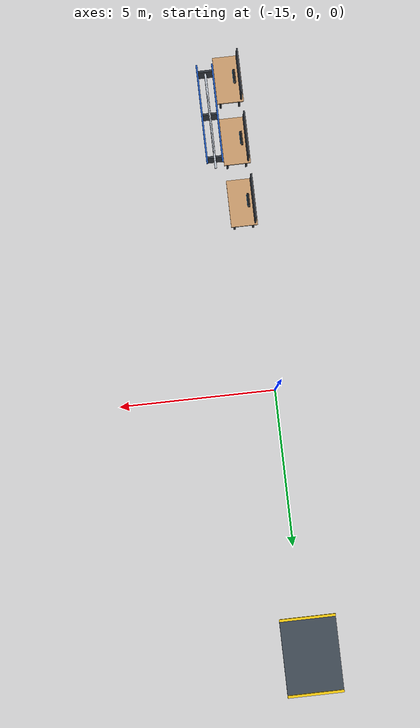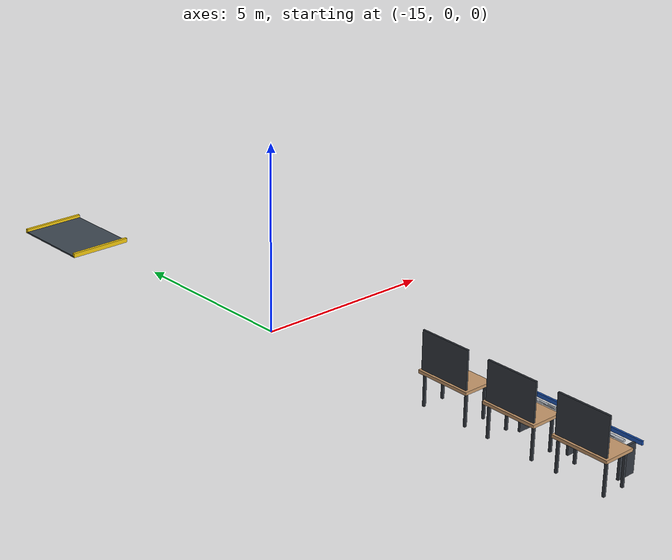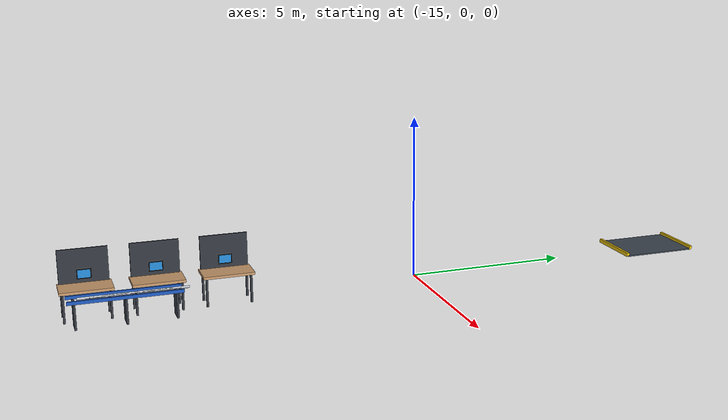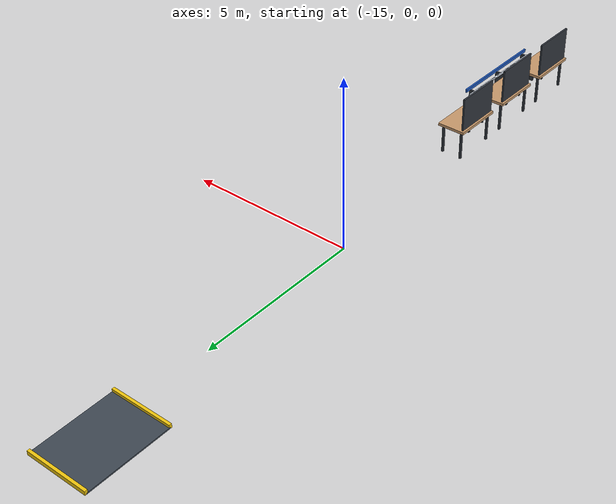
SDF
<sdf version="1.8">
 <world name="warehouse_3d">
  <model name="packing_equipment">
   <static>true</static>
   <link name="bench_top_0">
    <pose>-14.6000 -6.0000 0.9000 0.0000 0.0000 0.0000</pose>
    <collision name="bench_top_0_col">
     <geometry><box><size>0.8500 1.5000 0.0800</size></box></geometry>
    </collision>
    <visual name="bench_top_0_vis">
     <geometry><box><size>0.8500 1.5000 0.0800</size></box></geometry>
     <material>
      <ambient>0.507 0.390 0.273 1.00</ambient>
      <diffuse>0.780 0.600 0.420 1.00</diffuse>
      <specular>0.15 0.15 0.15 1.0</specular>
     </material>
    </visual>
   </link>
   <link name="bench_leg_0_0">
    <pose>-14.9000 -6.6500 0.4300 0.0000 0.0000 0.0000</pose>
    <collision name="bench_leg_0_0_col">
     <geometry><box><size>0.0600 0.0600 0.8600</size></box></geometry>
    </collision>
    <visual name="bench_leg_0_0_vis">
     <geometry><box><size>0.0600 0.0600 0.8600</size></box></geometry>
     <material>
      <ambient>0.130 0.143 0.163 1.00</ambient>
      <diffuse>0.200 0.220 0.250 1.00</diffuse>
      <specular>0.15 0.15 0.15 1.0</specular>
     </material>
    </visual>
   </link>
   <link name="bench_leg_0_1">
    <pose>-14.9000 -5.3500 0.4300 0.0000 0.0000 0.0000</pose>
    <collision name="bench_leg_0_1_col">
     <geometry><box><size>0.0600 0.0600 0.8600</size></box></geometry>
    </collision>
    <visual name="bench_leg_0_1_vis">
     <geometry><box><size>0.0600 0.0600 0.8600</size></box></geometry>
     <material>
      <ambient>0.130 0.143 0.163 1.00</ambient>
      <diffuse>0.200 0.220 0.250 1.00</diffuse>
      <specular>0.15 0.15 0.15 1.0</specular>
     </material>
    </visual>
   </link>
   <link name="bench_leg_0_2">
    <pose>-14.3000 -6.6500 0.4300 0.0000 0.0000 0.0000</pose>
    <collision name="bench_leg_0_2_col">
     <geometry><box><size>0.0600 0.0600 0.8600</size></box></geometry>
    </collision>
    <visual name="bench_leg_0_2_vis">
     <geometry><box><size>0.0600 0.0600 0.8600</size></box></geometry>
     <material>
      <ambient>0.130 0.143 0.163 1.00</ambient>
      <diffuse>0.200 0.220 0.250 1.00</diffuse>
      <specular>0.15 0.15 0.15 1.0</specular>
     </material>
    </visual>
   </link>
   <link name="bench_leg_0_3">
    <pose>-14.3000 -5.3500 0.4300 0.0000 0.0000 0.0000</pose>
    <collision name="bench_leg_0_3_col">
     <geometry><box><size>0.0600 0.0600 0.8600</size></box></geometry>
    </collision>
    <visual name="bench_leg_0_3_vis">
     <geometry><box><size>0.0600 0.0600 0.8600</size></box></geometry>
     <material>
      <ambient>0.130 0.143 0.163 1.00</ambient>
      <diffuse>0.200 0.220 0.250 1.00</diffuse>
      <specular>0.15 0.15 0.15 1.0</specular>
     </material>
    </visual>
   </link>
   <link name="bench_gantry_0">
    <pose>-14.9500 -6.0000 1.4500 0.0000 0.0000 0.0000</pose>
    <visual name="bench_gantry_0_vis">
     <geometry><box><size>0.0500 1.4000 1.0000</size></box></geometry>
     <material>
      <ambient>0.130 0.143 0.163 1.00</ambient>
      <diffuse>0.200 0.220 0.250 1.00</diffuse>
      <specular>0.15 0.15 0.15 1.0</specular>
     </material>
    </visual>
   </link>
   <link name="bench_screen_0">
    <pose>-14.8000 -6.0000 1.2500 0.0000 0.0000 0.0000</pose>
    <visual name="bench_screen_0_vis">
     <geometry><box><size>0.0600 0.4000 0.2800</size></box></geometry>
     <material>
      <ambient>0.065 0.065 0.065 1.00</ambient>
      <diffuse>0.100 0.100 0.100 1.00</diffuse>
      <specular>0.15 0.15 0.15 1.0</specular>
     </material>
    </visual>
   </link>
   <link name="bench_display_0">
    <pose>-14.7600 -6.0000 1.2500 0.0000 0.0000 0.0000</pose>
    <visual name="bench_display_0_vis">
     <geometry><box><size>0.0100 0.3600 0.2400</size></box></geometry>
     <material>
      <ambient>0.098 0.358 0.552 1.00</ambient>
      <diffuse>0.150 0.550 0.850 1.00</diffuse>
      <specular>0.15 0.15 0.15 1.0</specular>
      <emissive>0.100 0.400 0.700 1.0</emissive>
     </material>
    </visual>
   </link>
   <link name="bench_top_1">
    <pose>-14.6000 -8.0000 0.9000 0.0000 0.0000 0.0000</pose>
    <collision name="bench_top_1_col">
     <geometry><box><size>0.8500 1.5000 0.0800</size></box></geometry>
    </collision>
    <visual name="bench_top_1_vis">
     <geometry><box><size>0.8500 1.5000 0.0800</size></box></geometry>
     <material>
      <ambient>0.507 0.390 0.273 1.00</ambient>
      <diffuse>0.780 0.600 0.420 1.00</diffuse>
      <specular>0.15 0.15 0.15 1.0</specular>
     </material>
    </visual>
   </link>
   <link name="bench_leg_1_0">
    <pose>-14.9000 -8.6500 0.4300 0.0000 0.0000 0.0000</pose>
    <collision name="bench_leg_1_0_col">
     <geometry><box><size>0.0600 0.0600 0.8600</size></box></geometry>
    </collision>
    <visual name="bench_leg_1_0_vis">
     <geometry><box><size>0.0600 0.0600 0.8600</size></box></geometry>
     <material>
      <ambient>0.130 0.143 0.163 1.00</ambient>
      <diffuse>0.200 0.220 0.250 1.00</diffuse>
      <specular>0.15 0.15 0.15 1.0</specular>
     </material>
    </visual>
   </link>
   <link name="bench_leg_1_1">
    <pose>-14.9000 -7.3500 0.4300 0.0000 0.0000 0.0000</pose>
    <collision name="bench_leg_1_1_col">
     <geometry><box><size>0.0600 0.0600 0.8600</size></box></geometry>
    </collision>
    <visual name="bench_leg_1_1_vis">
     <geometry><box><size>0.0600 0.0600 0.8600</size></box></geometry>
     <material>
      <ambient>0.130 0.143 0.163 1.00</ambient>
      <diffuse>0.200 0.220 0.250 1.00</diffuse>
      <specular>0.15 0.15 0.15 1.0</specular>
     </material>
    </visual>
   </link>
   <link name="bench_leg_1_2">
    <pose>-14.3000 -8.6500 0.4300 0.0000 0.0000 0.0000</pose>
    <collision name="bench_leg_1_2_col">
     <geometry><box><size>0.0600 0.0600 0.8600</size></box></geometry>
    </collision>
    <visual name="bench_leg_1_2_vis">
     <geometry><box><size>0.0600 0.0600 0.8600</size></box></geometry>
     <material>
      <ambient>0.130 0.143 0.163 1.00</ambient>
      <diffuse>0.200 0.220 0.250 1.00</diffuse>
      <specular>0.15 0.15 0.15 1.0</specular>
     </material>
    </visual>
   </link>
   <link name="bench_leg_1_3">
    <pose>-14.3000 -7.3500 0.4300 0.0000 0.0000 0.0000</pose>
    <collision name="bench_leg_1_3_col">
     <geometry><box><size>0.0600 0.0600 0.8600</size></box></geometry>
    </collision>
    <visual name="bench_leg_1_3_vis">
     <geometry><box><size>0.0600 0.0600 0.8600</size></box></geometry>
     <material>
      <ambient>0.130 0.143 0.163 1.00</ambient>
      <diffuse>0.200 0.220 0.250 1.00</diffuse>
      <specular>0.15 0.15 0.15 1.0</specular>
     </material>
    </visual>
   </link>
   <link name="bench_gantry_1">
    <pose>-14.9500 -8.0000 1.4500 0.0000 0.0000 0.0000</pose>
    <visual name="bench_gantry_1_vis">
     <geometry><box><size>0.0500 1.4000 1.0000</size></box></geometry>
     <material>
      <ambient>0.130 0.143 0.163 1.00</ambient>
      <diffuse>0.200 0.220 0.250 1.00</diffuse>
      <specular>0.15 0.15 0.15 1.0</specular>
     </material>
    </visual>
   </link>
   <link name="bench_screen_1">
    <pose>-14.8000 -8.0000 1.2500 0.0000 0.0000 0.0000</pose>
    <visual name="bench_screen_1_vis">
     <geometry><box><size>0.0600 0.4000 0.2800</size></box></geometry>
     <material>
      <ambient>0.065 0.065 0.065 1.00</ambient>
      <diffuse>0.100 0.100 0.100 1.00</diffuse>
      <specular>0.15 0.15 0.15 1.0</specular>
     </material>
    </visual>
   </link>
   <link name="bench_display_1">
    <pose>-14.7600 -8.0000 1.2500 0.0000 0.0000 0.0000</pose>
    <visual name="bench_display_1_vis">
     <geometry><box><size>0.0100 0.3600 0.2400</size></box></geometry>
     <material>
      <ambient>0.098 0.358 0.552 1.00</ambient>
      <diffuse>0.150 0.550 0.850 1.00</diffuse>
      <specular>0.15 0.15 0.15 1.0</specular>
      <emissive>0.100 0.400 0.700 1.0</emissive>
     </material>
    </visual>
   </link>
   <link name="bench_top_2">
    <pose>-14.6000 -10.0000 0.9000 0.0000 0.0000 0.0000</pose>
    <collision name="bench_top_2_col">
     <geometry><box><size>0.8500 1.5000 0.0800</size></box></geometry>
    </collision>
    <visual name="bench_top_2_vis">
     <geometry><box><size>0.8500 1.5000 0.0800</size></box></geometry>
     <material>
      <ambient>0.507 0.390 0.273 1.00</ambient>
      <diffuse>0.780 0.600 0.420 1.00</diffuse>
      <specular>0.15 0.15 0.15 1.0</specular>
     </material>
    </visual>
   </link>
   <link name="bench_leg_2_0">
    <pose>-14.9000 -10.6500 0.4300 0.0000 0.0000 0.0000</pose>
    <collision name="bench_leg_2_0_col">
     <geometry><box><size>0.0600 0.0600 0.8600</size></box></geometry>
    </collision>
    <visual name="bench_leg_2_0_vis">
     <geometry><box><size>0.0600 0.0600 0.8600</size></box></geometry>
     <material>
      <ambient>0.130 0.143 0.163 1.00</ambient>
      <diffuse>0.200 0.220 0.250 1.00</diffuse>
      <specular>0.15 0.15 0.15 1.0</specular>
     </material>
    </visual>
   </link>
   <link name="bench_leg_2_1">
    <pose>-14.9000 -9.3500 0.4300 0.0000 0.0000 0.0000</pose>
    <collision name="bench_leg_2_1_col">
     <geometry><box><size>0.0600 0.0600 0.8600</size></box></geometry>
    </collision>
    <visual name="bench_leg_2_1_vis">
     <geometry><box><size>0.0600 0.0600 0.8600</size></box></geometry>
     <material>
      <ambient>0.130 0.143 0.163 1.00</ambient>
      <diffuse>0.200 0.220 0.250 1.00</diffuse>
      <specular>0.15 0.15 0.15 1.0</specular>
     </material>
    </visual>
   </link>
   <link name="bench_leg_2_2">
    <pose>-14.3000 -10.6500 0.4300 0.0000 0.0000 0.0000</pose>
    <collision name="bench_leg_2_2_col">
     <geometry><box><size>0.0600 0.0600 0.8600</size></box></geometry>
    </collision>
    <visual name="bench_leg_2_2_vis">
     <geometry><box><size>0.0600 0.0600 0.8600</size></box></geometry>
     <material>
      <ambient>0.130 0.143 0.163 1.00</ambient>
      <diffuse>0.200 0.220 0.250 1.00</diffuse>
      <specular>0.15 0.15 0.15 1.0</specular>
     </material>
    </visual>
   </link>
   <link name="bench_leg_2_3">
    <pose>-14.3000 -9.3500 0.4300 0.0000 0.0000 0.0000</pose>
    <collision name="bench_leg_2_3_col">
     <geometry><box><size>0.0600 0.0600 0.8600</size></box></geometry>
    </collision>
    <visual name="bench_leg_2_3_vis">
     <geometry><box><size>0.0600 0.0600 0.8600</size></box></geometry>
     <material>
      <ambient>0.130 0.143 0.163 1.00</ambient>
      <diffuse>0.200 0.220 0.250 1.00</diffuse>
      <specular>0.15 0.15 0.15 1.0</specular>
     </material>
    </visual>
   </link>
   <link name="bench_gantry_2">
    <pose>-14.9500 -10.0000 1.4500 0.0000 0.0000 0.0000</pose>
    <visual name="bench_gantry_2_vis">
     <geometry><box><size>0.0500 1.4000 1.0000</size></box></geometry>
     <material>
      <ambient>0.130 0.143 0.163 1.00</ambient>
      <diffuse>0.200 0.220 0.250 1.00</diffuse>
      <specular>0.15 0.15 0.15 1.0</specular>
     </material>
    </visual>
   </link>
   <link name="bench_screen_2">
    <pose>-14.8000 -10.0000 1.2500 0.0000 0.0000 0.0000</pose>
    <visual name="bench_screen_2_vis">
     <geometry><box><size>0.0600 0.4000 0.2800</size></box></geometry>
     <material>
      <ambient>0.065 0.065 0.065 1.00</ambient>
      <diffuse>0.100 0.100 0.100 1.00</diffuse>
      <specular>0.15 0.15 0.15 1.0</specular>
     </material>
    </visual>
   </link>
   <link name="bench_display_2">
    <pose>-14.7600 -10.0000 1.2500 0.0000 0.0000 0.0000</pose>
    <visual name="bench_display_2_vis">
     <geometry><box><size>0.0100 0.3600 0.2400</size></box></geometry>
     <material>
      <ambient>0.098 0.358 0.552 1.00</ambient>
      <diffuse>0.150 0.550 0.850 1.00</diffuse>
      <specular>0.15 0.15 0.15 1.0</specular>
      <emissive>0.100 0.400 0.700 1.0</emissive>
     </material>
    </visual>
   </link>
   <link name="conveyor_rail_l">
    <pose>-14.1500 -9.0000 0.8000 0.0000 0.0000 0.0000</pose>
    <collision name="conveyor_rail_l_col">
     <geometry><box><size>0.0500 3.2000 0.1000</size></box></geometry>
    </collision>
    <visual name="conveyor_rail_l_vis">
     <geometry><box><size>0.0500 3.2000 0.1000</size></box></geometry>
     <material>
      <ambient>0.078 0.227 0.488 1.00</ambient>
      <diffuse>0.120 0.350 0.750 1.00</diffuse>
      <specular>0.15 0.15 0.15 1.0</specular>
     </material>
    </visual>
   </link>
   <link name="conveyor_rail_r">
    <pose>-13.6500 -9.0000 0.8000 0.0000 0.0000 0.0000</pose>
    <collision name="conveyor_rail_r_col">
     <geometry><box><size>0.0500 3.2000 0.1000</size></box></geometry>
    </collision>
    <visual name="conveyor_rail_r_vis">
     <geometry><box><size>0.0500 3.2000 0.1000</size></box></geometry>
     <material>
      <ambient>0.078 0.227 0.488 1.00</ambient>
      <diffuse>0.120 0.350 0.750 1.00</diffuse>
      <specular>0.15 0.15 0.15 1.0</specular>
     </material>
    </visual>
   </link>
   <link name="conveyor_stand_0">
    <pose>-13.9000 -10.4000 0.3800 0.0000 0.0000 0.0000</pose>
    <collision name="conveyor_stand_0_col">
     <geometry><box><size>0.5000 0.0600 0.7600</size></box></geometry>
    </collision>
    <visual name="conveyor_stand_0_vis">
     <geometry><box><size>0.5000 0.0600 0.7600</size></box></geometry>
     <material>
      <ambient>0.130 0.143 0.163 1.00</ambient>
      <diffuse>0.200 0.220 0.250 1.00</diffuse>
      <specular>0.15 0.15 0.15 1.0</specular>
     </material>
    </visual>
   </link>
   <link name="conveyor_stand_1">
    <pose>-13.9000 -9.0000 0.3800 0.0000 0.0000 0.0000</pose>
    <collision name="conveyor_stand_1_col">
     <geometry><box><size>0.5000 0.0600 0.7600</size></box></geometry>
    </collision>
    <visual name="conveyor_stand_1_vis">
     <geometry><box><size>0.5000 0.0600 0.7600</size></box></geometry>
     <material>
      <ambient>0.130 0.143 0.163 1.00</ambient>
      <diffuse>0.200 0.220 0.250 1.00</diffuse>
      <specular>0.15 0.15 0.15 1.0</specular>
     </material>
    </visual>
   </link>
   <link name="conveyor_stand_2">
    <pose>-13.9000 -7.6000 0.3800 0.0000 0.0000 0.0000</pose>
    <collision name="conveyor_stand_2_col">
     <geometry><box><size>0.5000 0.0600 0.7600</size></box></geometry>
    </collision>
    <visual name="conveyor_stand_2_vis">
     <geometry><box><size>0.5000 0.0600 0.7600</size></box></geometry>
     <material>
      <ambient>0.130 0.143 0.163 1.00</ambient>
      <diffuse>0.200 0.220 0.250 1.00</diffuse>
      <specular>0.15 0.15 0.15 1.0</specular>
     </material>
    </visual>
   </link>
   <link name="roller_0">
    <pose>-13.9000 -10.0800 0.8200 1.5708 0.0000 0.0000</pose>
    <visual name="roller_0_vis">
     <geometry><cylinder><radius>0.0350</radius><length>0.4500</length></cylinder></geometry>
     <material>
      <ambient>0.488 0.507 0.533 1.00</ambient>
      <diffuse>0.750 0.780 0.820 1.00</diffuse>
      <specular>0.2 0.2 0.2 1.0</specular>
     </material>
    </visual>
   </link>
   <link name="roller_1">
    <pose>-13.9000 -9.8400 0.8200 1.5708 0.0000 0.0000</pose>
    <visual name="roller_1_vis">
     <geometry><cylinder><radius>0.0350</radius><length>0.4500</length></cylinder></geometry>
     <material>
      <ambient>0.488 0.507 0.533 1.00</ambient>
      <diffuse>0.750 0.780 0.820 1.00</diffuse>
      <specular>0.2 0.2 0.2 1.0</specular>
     </material>
    </visual>
   </link>
   <link name="roller_2">
    <pose>-13.9000 -9.6000 0.8200 1.5708 0.0000 0.0000</pose>
    <visual name="roller_2_vis">
     <geometry><cylinder><radius>0.0350</radius><length>0.4500</length></cylinder></geometry>
     <material>
      <ambient>0.488 0.507 0.533 1.00</ambient>
      <diffuse>0.750 0.780 0.820 1.00</diffuse>
      <specular>0.2 0.2 0.2 1.0</specular>
     </material>
    </visual>
   </link>
   <link name="roller_3">
    <pose>-13.9000 -9.3600 0.8200 1.5708 0.0000 0.0000</pose>
    <visual name="roller_3_vis">
     <geometry><cylinder><radius>0.0350</radius><length>0.4500</length></cylinder></geometry>
     <material>
      <ambient>0.488 0.507 0.533 1.00</ambient>
      <diffuse>0.750 0.780 0.820 1.00</diffuse>
      <specular>0.2 0.2 0.2 1.0</specular>
     </material>
    </visual>
   </link>
   <link name="roller_4">
    <pose>-13.9000 -9.1200 0.8200 1.5708 0.0000 0.0000</pose>
    <visual name="roller_4_vis">
     <geometry><cylinder><radius>0.0350</radius><length>0.4500</length></cylinder></geometry>
     <material>
      <ambient>0.488 0.507 0.533 1.00</ambient>
      <diffuse>0.750 0.780 0.820 1.00</diffuse>
      <specular>0.2 0.2 0.2 1.0</specular>
     </material>
    </visual>
   </link>
   <link name="roller_5">
    <pose>-13.9000 -8.8800 0.8200 1.5708 0.0000 0.0000</pose>
    <visual name="roller_5_vis">
     <geometry><cylinder><radius>0.0350</radius><length>0.4500</length></cylinder></geometry>
     <material>
      <ambient>0.488 0.507 0.533 1.00</ambient>
      <diffuse>0.750 0.780 0.820 1.00</diffuse>
      <specular>0.2 0.2 0.2 1.0</specular>
     </material>
    </visual>
   </link>
   <link name="roller_6">
    <pose>-13.9000 -8.6400 0.8200 1.5708 0.0000 0.0000</pose>
    <visual name="roller_6_vis">
     <geometry><cylinder><radius>0.0350</radius><length>0.4500</length></cylinder></geometry>
     <material>
      <ambient>0.488 0.507 0.533 1.00</ambient>
      <diffuse>0.750 0.780 0.820 1.00</diffuse>
      <specular>0.2 0.2 0.2 1.0</specular>
     </material>
    </visual>
   </link>
   <link name="roller_7">
    <pose>-13.9000 -8.4000 0.8200 1.5708 0.0000 0.0000</pose>
    <visual name="roller_7_vis">
     <geometry><cylinder><radius>0.0350</radius><length>0.4500</length></cylinder></geometry>
     <material>
      <ambient>0.488 0.507 0.533 1.00</ambient>
      <diffuse>0.750 0.780 0.820 1.00</diffuse>
      <specular>0.2 0.2 0.2 1.0</specular>
     </material>
    </visual>
   </link>
   <link name="roller_8">
    <pose>-13.9000 -8.1600 0.8200 1.5708 0.0000 0.0000</pose>
    <visual name="roller_8_vis">
     <geometry><cylinder><radius>0.0350</radius><length>0.4500</length></cylinder></geometry>
     <material>
      <ambient>0.488 0.507 0.533 1.00</ambient>
      <diffuse>0.750 0.780 0.820 1.00</diffuse>
      <specular>0.2 0.2 0.2 1.0</specular>
     </material>
    </visual>
   </link>
   <link name="roller_9">
    <pose>-13.9000 -7.9200 0.8200 1.5708 0.0000 0.0000</pose>
    <visual name="roller_9_vis">
     <geometry><cylinder><radius>0.0350</radius><length>0.4500</length></cylinder></geometry>
     <material>
      <ambient>0.488 0.507 0.533 1.00</ambient>
      <diffuse>0.750 0.780 0.820 1.00</diffuse>
      <specular>0.2 0.2 0.2 1.0</specular>
     </material>
    </visual>
   </link>
   <link name="roller_10">
    <pose>-13.9000 -7.6800 0.8200 1.5708 0.0000 0.0000</pose>
    <visual name="roller_10_vis">
     <geometry><cylinder><radius>0.0350</radius><length>0.4500</length></cylinder></geometry>
     <material>
      <ambient>0.488 0.507 0.533 1.00</ambient>
      <diffuse>0.750 0.780 0.820 1.00</diffuse>
      <specular>0.2 0.2 0.2 1.0</specular>
     </material>
    </visual>
   </link>
   <link name="roller_11">
    <pose>-13.9000 -7.4400 0.8200 1.5708 0.0000 0.0000</pose>
    <visual name="roller_11_vis">
     <geometry><cylinder><radius>0.0350</radius><length>0.4500</length></cylinder></geometry>
     <material>
      <ambient>0.488 0.507 0.533 1.00</ambient>
      <diffuse>0.750 0.780 0.820 1.00</diffuse>
      <specular>0.2 0.2 0.2 1.0</specular>
     </material>
    </visual>
   </link>
   <link name="dock_leveler_plate">
    <pose>-15.2000 8.5000 0.0200 0.0000 0.0000 0.0000</pose>
    <collision name="dock_leveler_plate_col">
     <geometry><box><size>1.8000 2.4000 0.0400</size></box></geometry>
    </collision>
    <visual name="dock_leveler_plate_vis">
     <geometry><box><size>1.8000 2.4000 0.0400</size></box></geometry>
     <material>
      <ambient>0.156 0.182 0.208 1.00</ambient>
      <diffuse>0.240 0.280 0.320 1.00</diffuse>
      <specular>0.15 0.15 0.15 1.0</specular>
     </material>
    </visual>
   </link>
   <link name="dock_curb_n">
    <pose>-15.2000 9.7000 0.0600 0.0000 0.0000 0.0000</pose>
    <collision name="dock_curb_n_col">
     <geometry><box><size>1.8000 0.0800 0.1200</size></box></geometry>
    </collision>
    <visual name="dock_curb_n_vis">
     <geometry><box><size>1.8000 0.0800 0.1200</size></box></geometry>
     <material>
      <ambient>0.617 0.507 0.033 1.00</ambient>
      <diffuse>0.950 0.780 0.050 1.00</diffuse>
      <specular>0.15 0.15 0.15 1.0</specular>
     </material>
    </visual>
   </link>
   <link name="dock_curb_s">
    <pose>-15.2000 7.3000 0.0600 0.0000 0.0000 0.0000</pose>
    <collision name="dock_curb_s_col">
     <geometry><box><size>1.8000 0.0800 0.1200</size></box></geometry>
    </collision>
    <visual name="dock_curb_s_vis">
     <geometry><box><size>1.8000 0.0800 0.1200</size></box></geometry>
     <material>
      <ambient>0.617 0.507 0.033 1.00</ambient>
      <diffuse>0.950 0.780 0.050 1.00</diffuse>
      <specular>0.15 0.15 0.15 1.0</specular>
     </material>
    </visual>
   </link>
  </model>
 </world>
</sdf>
